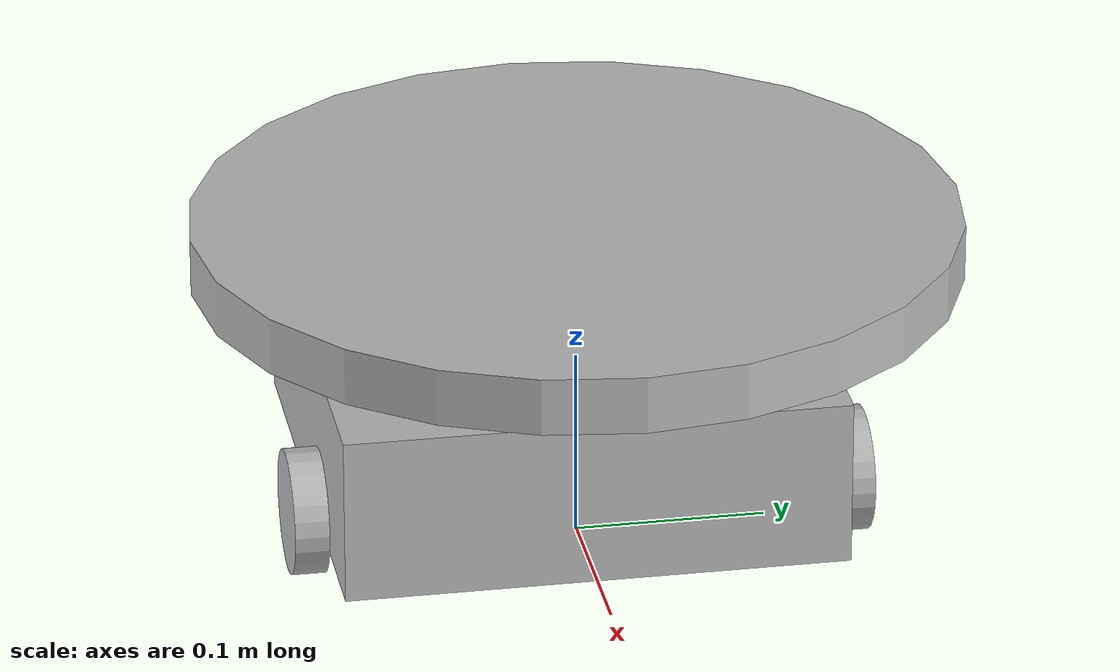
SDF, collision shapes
<?xml version="1.0" ?>
<sdf version="1.5">
    <model name="amazon_robot2">
        <link name="base">

            <inertial>
                <pose>-0.064 0 0.048 0 0 0</pose>
                <inertia>
                    <ixx>0.001</ixx>
                    <ixy>0.000</ixy>
                    <ixz>0.000</ixz>
                    <iyy>0.001</iyy>
                    <iyz>0.000</iyz>
                    <izz>0.001</izz>
                </inertia>
                <mass>1.0</mass>
            </inertial>

            <collision name="base_collision">
                <pose>-0.064 0 0.048 0 0 0</pose>
                <geometry>
                    <box>
                        <size>0.265 0.265 0.089</size>
                    </box>
                </geometry>
            </collision>

            <visual name="base_visual">
                <pose>-0.064 0 0 0 0 0</pose>
                <geometry>
                    <mesh>
                        <uri>model://amazon_robot/meshes/waffle_pi_base.dae</uri>
                        <scale>0.001 0.001 0.001</scale>
                    </mesh>
                </geometry>
            </visual>

            <collision name="right_caster_collision">
                <pose>-0.177 -0.064 -0.004 0 0 0</pose>
                <geometry>
                    <sphere>
                        <radius>0.005000</radius>
                    </sphere>
                </geometry>
                <surface>
                    <friction>
                        <ode>
                            <mu>100000.0</mu>
                            <mu2>100000.0</mu2>
                            <fdir1>0 0 0</fdir1>
                            <slip1>0</slip1>
                            <slip2>0</slip2>
                        </ode>
                    </friction>
                </surface>
            </collision>

            <collision name="left_caster_collision">
                <pose>-0.177 0.064 -0.004 0 0 0</pose>
                <geometry>
                    <sphere>
                        <radius>0.005000</radius>
                    </sphere>
                </geometry>
                <surface>
                    <friction>
                        <ode>
                            <mu>100000.0</mu>
                            <mu2>100000.0</mu2>
                            <fdir1>0 0 0</fdir1>
                            <slip1>0</slip1>
                            <slip2>0</slip2>
                        </ode>
                    </friction>
                </surface>
            </collision>
        </link>

        <link name="lidar">
            <inertial>
                <pose>-0.052 0 0.111 0 0 0</pose>
                <inertia>
                    <ixx>0.001</ixx>
                    <ixy>0.000</ixy>
                    <ixz>0.000</ixz>
                    <iyy>0.001</iyy>
                    <iyz>0.000</iyz>
                    <izz>0.001</izz>
                </inertia>
                <mass>0.125</mass>
            </inertial>

            <collision name="lidar_sensor_collision">
                <pose>-0.052 0 0.111 0 0 0</pose>
                <geometry>
                    <cylinder>
                        <radius>0.0508</radius>
                        <length>0.055</length>
                    </cylinder>
                </geometry>
            </collision>

            <visual name="lidar_sensor_visual">
                <pose>-0.064 0 0.121 0 0 0</pose>
                <geometry>
                    <mesh>
                        <uri>model://amazon_robot/meshes/lds.dae</uri>
                        <scale>0.001 0.001 0.001</scale>
                    </mesh>
                </geometry>
            </visual>

            <sensor name="hls_lfcd_lds" type="ray">
                <always_on>1</always_on>
                <visualize>1</visualize>
                <pose>-0.064 0 0.121 0 0 0</pose>
                <update_rate>1800</update_rate>
                <ray>
                    <scan>
                        <horizontal>
                            <samples>360</samples>
                            <resolution>1.000000</resolution>
                            <min_angle>0.000000</min_angle>
                            <max_angle>6.280000</max_angle>
                        </horizontal>
                    </scan>
                    <range>
                        <min>0.120000</min>
                        <max>3.5</max>
                        <resolution>0.015000</resolution>
                    </range>
                    <noise>
                        <type>gaussian</type>
                        <mean>0.0</mean>
                        <stddev>0.01</stddev>
                    </noise>
                </ray>
            </sensor>
        </link>

        <link name="left_wheel">

            <inertial>
                <pose>0.0 0.144 0.023 -1.57 0 0</pose>
                <inertia>
                    <ixx>0.001</ixx>
                    <ixy>0.000</ixy>
                    <ixz>0.000</ixz>
                    <iyy>0.001</iyy>
                    <iyz>0.000</iyz>
                    <izz>0.001</izz>
                </inertia>
                <mass>0.1</mass>
            </inertial>

            <collision name="left_wheel_collision">
                <pose>0.0 0.144 0.023 -1.57 0 0</pose>
                <geometry>
                    <cylinder>
                        <radius>0.033</radius>
                        <length>0.018</length>
                    </cylinder>
                </geometry>
                <surface>
                    <friction>
                        <ode>
                            <mu>100000.0</mu>
                            <mu2>100000.0</mu2>
                            <fdir1>0 0 0</fdir1>
                            <slip1>0.0</slip1>
                            <slip2>0.0</slip2>
                        </ode>
                    </friction>
                </surface>
            </collision>

            <visual name="left_wheel_visual">
                <pose>0.0 0.144 0.023 0 0 0</pose>
                <geometry>
                    <mesh>
                        <uri>model://amazon_robot/meshes/left_tire.dae</uri>
                        <scale>0.001 0.001 0.001</scale>
                    </mesh>
                </geometry>
            </visual>
        </link>

        <link name="right_wheel">

            <inertial>
                <pose>0.0 -0.144 0.023 -1.57 0 0</pose>
                <inertia>
                    <ixx>0.001</ixx>
                    <ixy>0.000</ixy>
                    <ixz>0.000</ixz>
                    <iyy>0.001</iyy>
                    <iyz>0.000</iyz>
                    <izz>0.001</izz>
                </inertia>
                <mass>0.1</mass>
            </inertial>

            <collision name="right_wheel_collision">
                <pose>0.0 -0.144 0.023 -1.57 0 0</pose>
                <geometry>
                    <cylinder>
                        <radius>0.033</radius>
                        <length>0.018</length>
                    </cylinder>
                </geometry>
                <surface>
                    <friction>
                        <ode>
                            <mu>100000.0</mu>
                            <mu2>100000.0</mu2>
                            <fdir1>0 0 0</fdir1>
                            <slip1>0.0</slip1>
                            <slip2>0.0</slip2>
                        </ode>
                    </friction>
                </surface>
            </collision>

            <visual name="right_wheel_visual">
                <pose>0.0 -0.144 0.023 0 0 0</pose>
                <geometry>
                    <mesh>
                        <uri>model://amazon_robot/meshes/right_tire.dae</uri>
                        <scale>0.001 0.001 0.001</scale>
                    </mesh>
                </geometry>
            </visual>
        </link>

        <!-- Lift platform -->
        <link name="top_lift">
            <pose>0 0 0.166 0 0 0</pose>
            <collision name="collision">
                <geometry>
                    <cylinder>
                        <radius>.2</radius>
                        <length>.03</length>
                    </cylinder>
                </geometry>
                <surface>
                    <friction>
                        <ode>
                            <mu>Inf</mu>
                            <mu2>Inf</mu2>
                            <slip1>0.0</slip1>
                            <slip2>0.0</slip2>
                        </ode>
                    </friction>
                </surface>
            </collision>
            <visual name="visual">
                <geometry>
                    <cylinder>
                        <radius>.2</radius>
                        <length>.03</length>
                    </cylinder>
                </geometry>
            </visual>
        </link>

        <!-- Joints -->

        <joint name="left_wheel_joint" type="revolute">
            <parent>base</parent>
            <child>left_wheel</child>
            <pose>0.0 0.144 0.023 -1.57 0 0</pose>
            <axis>
                <xyz>0 1 0</xyz>
            </axis>
        </joint>

        <joint name="right_wheel_joint" type="revolute">
            <parent>base</parent>
            <child>right_wheel</child>
            <pose>0.0 -0.144 0.023 -1.57 0 0</pose>
            <axis>
                <xyz>0 1 0</xyz>
            </axis>
        </joint>

        <joint name="lidar_joint" type="fixed">
            <parent>base</parent>
            <child>lidar</child>
            <pose>-0.064 0 0.121 0 0 0</pose>
            <axis>
                <xyz>0 0 1</xyz>
                <use_parent_model_frame>true</use_parent_model_frame>
            </axis>
        </joint>

        <joint type="screw" name="top_joint_lift_hinge">
            <pose>0 0 0.166 0 0 0</pose>
            <parent>base</parent>
            <child>top_lift</child>
            <axis>
                <xyz>0 0 -1</xyz>
                <limit>
                    <upper>1</upper>
                    <lower>0</lower>
                </limit>
            </axis>
            <thread_pitch>31.416</thread_pitch>
        </joint>

    </model>
</sdf>
